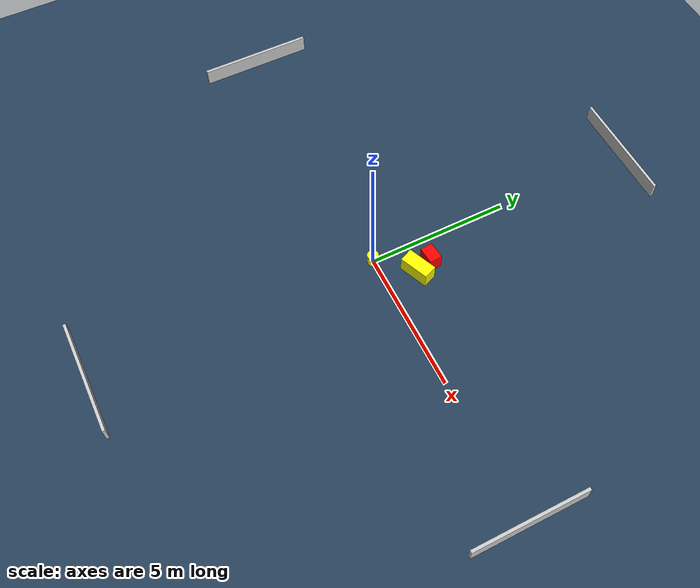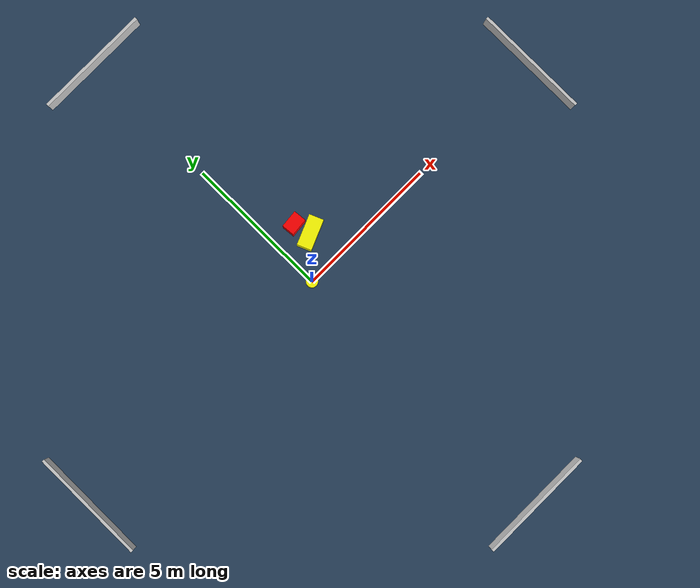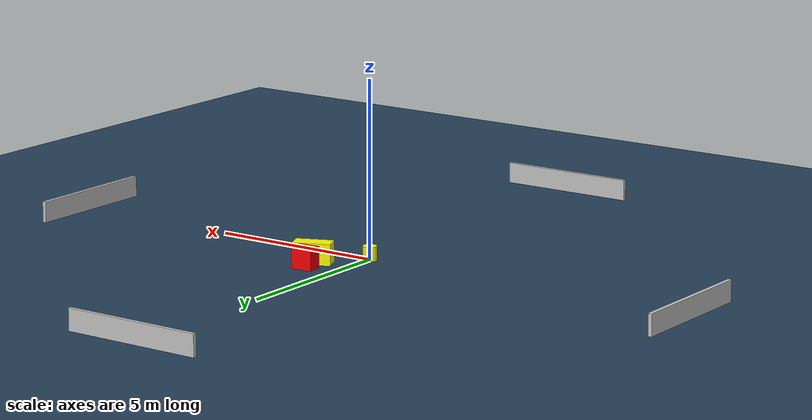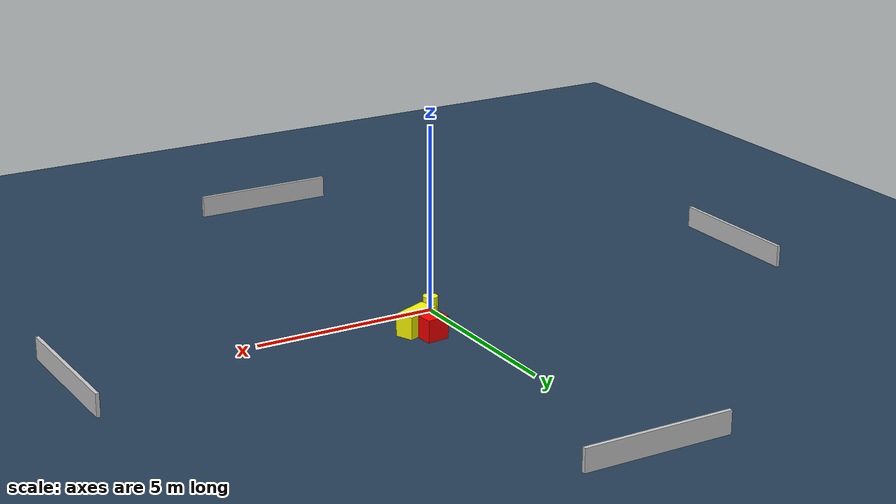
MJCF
<?xml version="1.0" ?>
<mujoco model="generated_environment">
  <option timestep="0.01" integrator="RK4" cone="elliptic"/>
  <default>
    <geom density="1"/>
  </default>
  <asset>
    <texture builtin="gradient" height="3072" name="skybox" rgb1="0.3 0.5 0.7" rgb2="0 0 0" type="skybox" width="512"/>
    <texture builtin="checker" height="300" name="groundplane" rgb1="0.2 0.3 0.4" rgb2="0.1 0.2 0.3" type="2d" width="300"/>
    <material name="groundplane" reflectance="0.2" texrepeat="5 5" texture="groundplane"/>
  </asset>
  <worldbody>
    <light dir="0 0 -1" directional="true" pos="0 0 1.5"/>
    <geom condim="3" friction="0.5 0.005 0.001" material="groundplane" name="floor" pos="0 0 0" size="0 0 0.05" type="plane"/>
    <body name="walls">
      <geom name="wall_1" condim="4" pos="-10.0 0.0 0.3" rgba="0.800000011920929 0.800000011920929 0.800000011920929 1.0" size="0.05 2.0 0.3" type="box"/>
      <geom name="wall_2" condim="4" pos="10.0 0.0 0.3" rgba="0.800000011920929 0.800000011920929 0.800000011920929 1.0" size="0.05 2.0 0.3" type="box"/>
      <geom name="wall_3" condim="4" pos="0.0 -10.0 0.3" rgba="0.800000011920929 0.800000011920929 0.800000011920929 1.0" size="2.0 0.05 0.3" type="box"/>
      <geom name="wall_4" condim="4" pos="0.0 10.0 0.3" rgba="0.800000011920929 0.800000011920929 0.800000011920929 1.0" size="2.0 0.05 0.3" type="box"/>
    </body>
    <body name="robot">
      <joint name="joint_x" type="slide" pos="0 0 0" axis="1 0 0"/>
      <joint name="joint_y" type="slide" pos="0 0 0" axis="0 1 0"/>
      <geom name="robot" type="cylinder" pos="0.0 0.0 0.2" size="0.2 0.2 0.0" mass="5.0" friction="1.0 0.005 0.0001" condim="4" rgba="1.0 1.0 0.0 1.0"/>
    </body>
    <body name="obstacle_1_movable">
      <geom name="obstacle_1_movable" condim="4" pos="1.065384549756265 1.1375628403517977 0.3" euler="0 0 292.8399293130446" friction="0.0 0.005 0.001" rgba="1.0 1.0 0.0 1.0" size="0.24709696622679392 0.5266737265914893 0.3" type="box" mass="0.1"/>
      <joint type="free"/>
    </body>
    <body name="obstacle_2_static">
      <geom name="obstacle_2_static" condim="4" pos="0.905462298740251 1.7143660458741805 0.3" euler="0 0 185.483777000617" friction="0.0 0.005 0.001" rgba="1.0 0.0 0.0 1.0" size="0.30447501268838895 0.21984414413117445 0.3" type="box"/>
    </body>
  </worldbody>
  <actuator>
    <motor name="actuator_x" joint="joint_x" gear="1" ctrlrange="-1 1"/>
    <motor name="actuator_y" joint="joint_y" gear="1" ctrlrange="-1 1"/>
  </actuator>
</mujoco>
